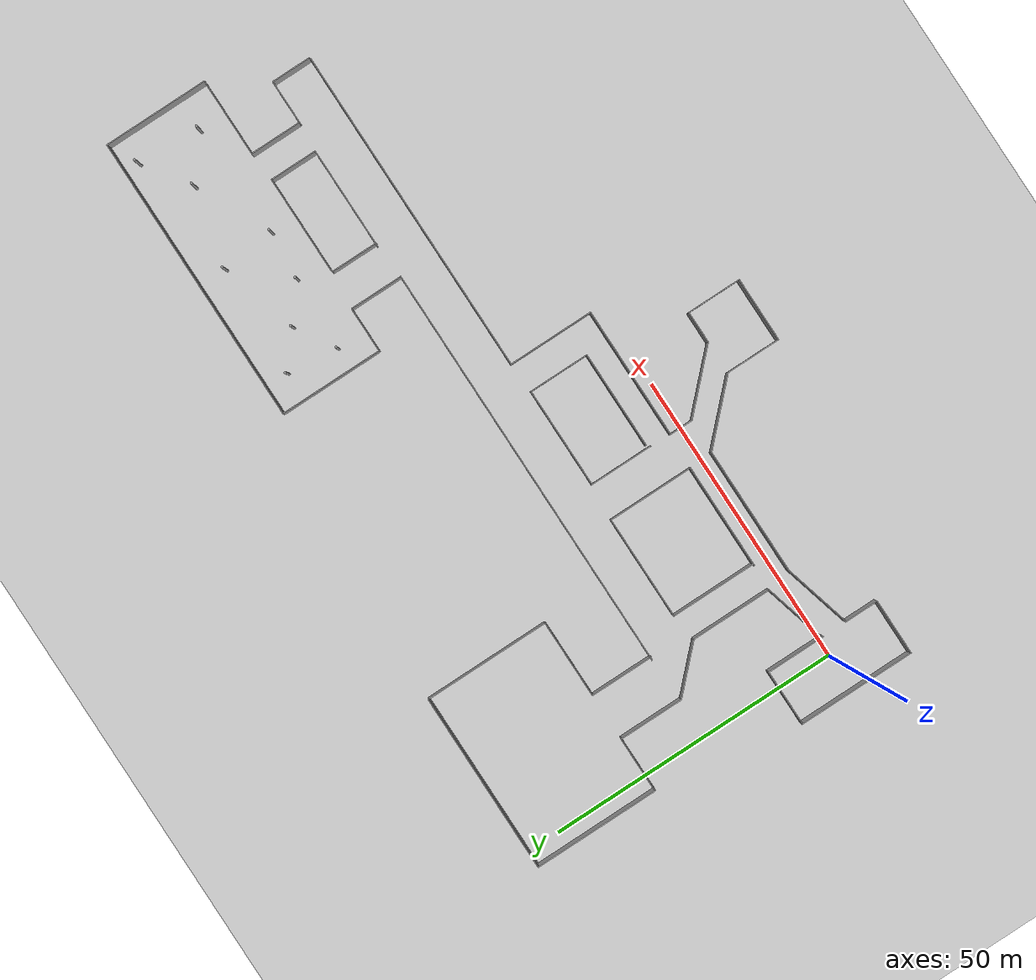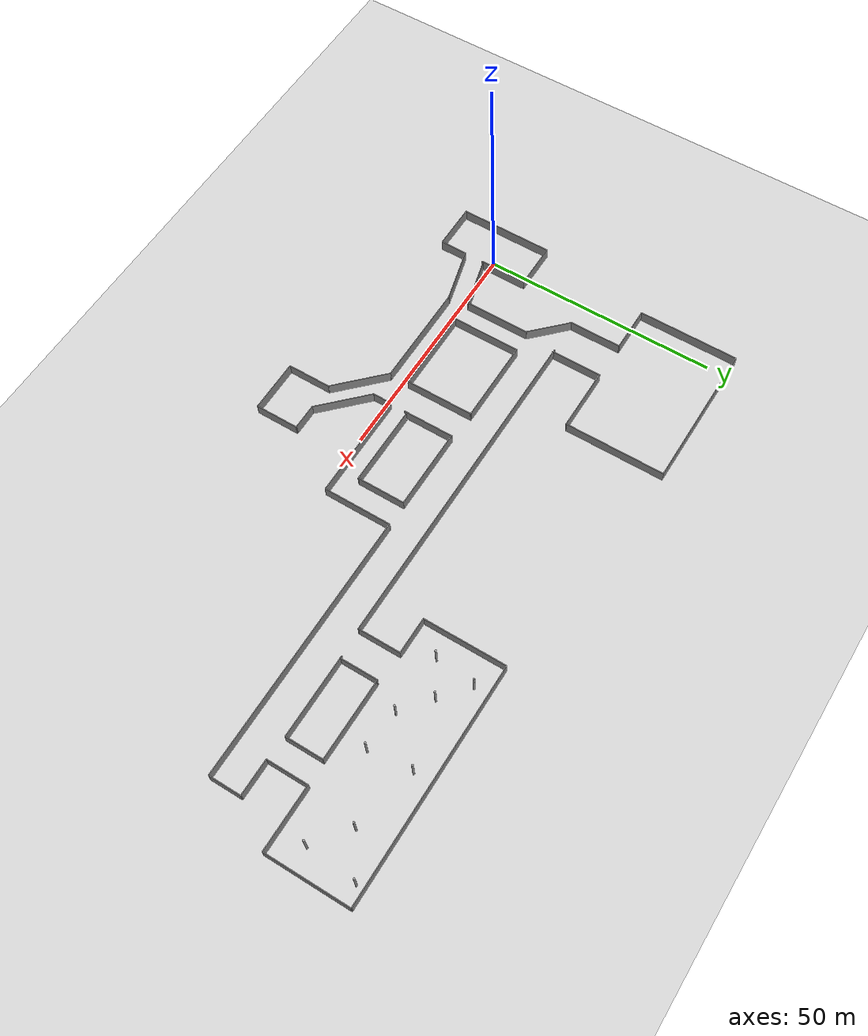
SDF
<sdf version="1.6">
 <world name="default">
  <model name="ground_plane">
   <static>1</static>
   <link name="link">
    <collision name="collision">
     <geometry><plane><normal>0 0 1</normal><size>100 100</size></plane></geometry>
     <surface><friction><ode><mu>100</mu><mu2>50</mu2></ode></friction></surface>
    </collision>
    <visual name="visual">
     <cast_shadows>0</cast_shadows>
     <geometry><plane><normal>0 0 1</normal><size>100 100</size></plane></geometry>
     <material>
      <script><uri>file://media/materials/scripts/gazebo.material</uri><name>Gazebo/Grey</name></script>
     </material>
    </visual>
   </link>
  </model>
  <model name="MultiExploreWorld_0">
   <pose>60 17.8179 2.5 0 -0 0</pose>
   <link name="Wall_10">
    <collision name="Wall_10_Collision">
     <geometry><box><size>9.5 0.15 2.5</size></box></geometry>
     <pose>0 0 1.25 0 -0 0</pose>
    </collision>
    <visual name="Wall_10_Visual">
     <pose>0 0 1.25 0 -0 0</pose>
     <geometry><box><size>9.5 0.15 2.5</size></box></geometry>
     <material>
      <script><uri>file://media/materials/scripts/gazebo.material</uri><name>Gazebo/Grey</name></script>
      <ambient>1 1 1 1</ambient>
     </material>
     <meta><layer>0</layer></meta>
    </visual>
    <pose>-60.789 -27.8261 0 0 -0 0</pose>
   </link>
   <link name="Wall_11">
    <collision name="Wall_11_Collision">
     <geometry><box><size>5.75 0.15 2.5</size></box></geometry>
     <pose>0 0 1.25 0 -0 0</pose>
    </collision>
    <visual name="Wall_11_Visual">
     <pose>0 0 1.25 0 -0 0</pose>
     <geometry><box><size>5.75 0.15 2.5</size></box></geometry>
     <material>
      <script><uri>file://media/materials/scripts/gazebo.material</uri><name>Gazebo/Grey</name></script>
      <ambient>1 1 1 1</ambient>
     </material>
     <meta><layer>0</layer></meta>
    </visual>
    <pose>-56.114 -25.0261 0 0 -0 1.5708</pose>
   </link>
   <link name="Wall_12">
    <collision name="Wall_12_Collision">
     <geometry><box><size>11.75 0.15 2.5</size></box></geometry>
     <pose>0 0 1.25 0 -0 0</pose>
    </collision>
    <visual name="Wall_12_Visual">
     <pose>0 0 1.25 0 -0 0</pose>
     <geometry><box><size>11.75 0.15 2.5</size></box></geometry>
     <material>
      <script><uri>file://media/materials/scripts/gazebo.material</uri><name>Gazebo/Grey</name></script>
      <ambient>1 1 1 1</ambient>
     </material>
     <meta><layer>0</layer></meta>
    </visual>
    <pose>-50.5116 -20.7249 0 0 -0 0.261799</pose>
   </link>
   <link name="Wall_13">
    <collision name="Wall_13_Collision">
     <geometry><box><size>21.5 0.15 2.5</size></box></geometry>
     <pose>0 0 1.25 0 -0 0</pose>
    </collision>
    <visual name="Wall_13_Visual">
     <pose>0 0 1.25 0 -0 0</pose>
     <geometry><box><size>21.5 0.15 2.5</size></box></geometry>
     <material>
      <script><uri>file://media/materials/scripts/gazebo.material</uri><name>Gazebo/Grey</name></script>
      <ambient>1 1 1 1</ambient>
     </material>
     <meta><layer>0</layer></meta>
    </visual>
    <pose>-34.2342 -19.2238 0 0 -0 0</pose>
   </link>
   <link name="Wall_14">
    <collision name="Wall_14_Collision">
     <geometry><box><size>12.5 0.15 2.5</size></box></geometry>
     <pose>0 0 1.25 0 -0 0</pose>
    </collision>
    <visual name="Wall_14_Visual">
     <pose>0 0 1.25 0 -0 0</pose>
     <geometry><box><size>12.5 0.15 2.5</size></box></geometry>
     <material>
      <script><uri>file://media/materials/scripts/gazebo.material</uri><name>Gazebo/Grey</name></script>
      <ambient>1 1 1 1</ambient>
     </material>
     <meta><layer>0</layer></meta>
    </visual>
    <pose>-19.1929 -23.5902 0 0 -0 -0.785398</pose>
   </link>
   <link name="Wall_15">
    <collision name="Wall_15_Collision">
     <geometry><box><size>9.25 0.15 2.5</size></box></geometry>
     <pose>0 0 1.25 0 -0 0</pose>
    </collision>
    <visual name="Wall_15_Visual">
     <pose>0 0 1.25 0 -0 0</pose>
     <geometry><box><size>9.25 0.15 2.5</size></box></geometry>
     <material>
      <script><uri>file://media/materials/scripts/gazebo.material</uri><name>Gazebo/Grey</name></script>
      <ambient>1 1 1 1</ambient>
     </material>
     <meta><layer>0</layer></meta>
    </visual>
    <pose>-14.8265 -32.5066 0 0 -0 -1.5708</pose>
   </link>
   <link name="Wall_16">
    <collision name="Wall_16_Collision">
     <geometry><box><size>11 0.15 2.5</size></box></geometry>
     <pose>0 0 1.25 0 -0 0</pose>
    </collision>
    <visual name="Wall_16_Visual">
     <pose>0 0 1.25 0 -0 0</pose>
     <geometry><box><size>11 0.15 2.5</size></box></geometry>
     <material>
      <script><uri>file://media/materials/scripts/gazebo.material</uri><name>Gazebo/Grey</name></script>
      <ambient>1 1 1 1</ambient>
     </material>
     <meta><layer>0</layer></meta>
    </visual>
    <pose>-9.40147 -37.0566 0 0 -0 0</pose>
   </link>
   <link name="Wall_17">
    <collision name="Wall_17_Collision">
     <geometry><box><size>9.25 0.15 2.5</size></box></geometry>
     <pose>0 0 1.25 0 -0 0</pose>
    </collision>
    <visual name="Wall_17_Visual">
     <pose>0 0 1.25 0 -0 0</pose>
     <geometry><box><size>9.25 0.15 2.5</size></box></geometry>
     <material>
      <script><uri>file://media/materials/scripts/gazebo.material</uri><name>Gazebo/Grey</name></script>
      <ambient>1 1 1 1</ambient>
     </material>
     <meta><layer>0</layer></meta>
    </visual>
    <pose>-3.97648 -32.5066 0 0 -0 1.5708</pose>
   </link>
   <link name="Wall_24">
    <collision name="Wall_24_Collision">
     <geometry><box><size>6.75 0.15 2.5</size></box></geometry>
     <pose>0 0 1.25 0 -0 0</pose>
    </collision>
    <visual name="Wall_24_Visual">
     <pose>0 0 1.25 0 -0 0</pose>
     <geometry><box><size>6.75 0.15 2.5</size></box></geometry>
     <material>
      <script><uri>file://media/materials/scripts/gazebo.material</uri><name>Gazebo/Grey</name></script>
      <ambient>1 1 1 1</ambient>
     </material>
     <meta><layer>0</layer></meta>
    </visual>
    <pose>59.714 2.20299 0 0 -0 1.5708</pose>
   </link>
   <link name="Wall_25">
    <collision name="Wall_25_Collision">
     <geometry><box><size>7.5 0.15 2.5</size></box></geometry>
     <pose>0 0 1.25 0 -0 0</pose>
    </collision>
    <visual name="Wall_25_Visual">
     <pose>0 0 1.25 0 -0 0</pose>
     <geometry><box><size>7.5 0.15 2.5</size></box></geometry>
     <material>
      <script><uri>file://media/materials/scripts/gazebo.material</uri><name>Gazebo/Grey</name></script>
      <ambient>1 1 1 1</ambient>
     </material>
     <meta><layer>0</layer></meta>
    </visual>
    <pose>56.039 5.50299 0 0 -0 3.14159</pose>
   </link>
   <link name="Wall_26">
    <collision name="Wall_26_Collision">
     <geometry><box><size>8.75 0.15 2.5</size></box></geometry>
     <pose>0 0 1.25 0 -0 0</pose>
    </collision>
    <visual name="Wall_26_Visual">
     <pose>0 0 1.25 0 -0 0</pose>
     <geometry><box><size>8.75 0.15 2.5</size></box></geometry>
     <material>
      <script><uri>file://media/materials/scripts/gazebo.material</uri><name>Gazebo/Grey</name></script>
      <ambient>1 1 1 1</ambient>
     </material>
     <meta><layer>0</layer></meta>
    </visual>
    <pose>52.364 9.80299 0 0 -0 1.5708</pose>
   </link>
   <link name="Wall_27">
    <collision name="Wall_27_Collision">
     <geometry><box><size>13.25 0.15 2.5</size></box></geometry>
     <pose>0 0 1.25 0 -0 0</pose>
    </collision>
    <visual name="Wall_27_Visual">
     <pose>0 0 1.25 0 -0 0</pose>
     <geometry><box><size>13.25 0.15 2.5</size></box></geometry>
     <material>
      <script><uri>file://media/materials/scripts/gazebo.material</uri><name>Gazebo/Grey</name></script>
      <ambient>1 1 1 1</ambient>
     </material>
     <meta><layer>0</layer></meta>
    </visual>
    <pose>58.914 14.103 0 0 -0 0</pose>
   </link>
   <link name="Wall_28">
    <collision name="Wall_28_Collision">
     <geometry><box><size>17.75 0.15 2.5</size></box></geometry>
     <pose>0 0 1.25 0 -0 0</pose>
    </collision>
    <visual name="Wall_28_Visual">
     <pose>0 0 1.25 0 -0 0</pose>
     <geometry><box><size>17.75 0.15 2.5</size></box></geometry>
     <material>
      <script><uri>file://media/materials/scripts/gazebo.material</uri><name>Gazebo/Grey</name></script>
      <ambient>1 1 1 1</ambient>
     </material>
     <meta><layer>0</layer></meta>
    </visual>
    <pose>65.464 22.903 0 0 -0 1.5708</pose>
   </link>
   <link name="Wall_29">
    <collision name="Wall_29_Collision">
     <geometry><box><size>48.75 0.15 2.5</size></box></geometry>
     <pose>0 0 1.25 0 -0 0</pose>
    </collision>
    <visual name="Wall_29_Visual">
     <pose>0 0 1.25 0 -0 0</pose>
     <geometry><box><size>48.75 0.15 2.5</size></box></geometry>
     <material>
      <script><uri>file://media/materials/scripts/gazebo.material</uri><name>Gazebo/Grey</name></script>
      <ambient>1 1 1 1</ambient>
     </material>
     <meta><layer>0</layer></meta>
    </visual>
    <pose>41.164 31.703 0 0 -0 3.14159</pose>
   </link>
   <link name="Wall_3">
    <collision name="Wall_3_Collision">
     <geometry><box><size>10 0.15 2.5</size></box></geometry>
     <pose>0 0 1.25 0 -0 0</pose>
    </collision>
    <visual name="Wall_3_Visual">
     <pose>0 0 1.25 0 -0 0</pose>
     <geometry><box><size>10 0.15 2.5</size></box></geometry>
     <material>
      <script><uri>file://media/materials/scripts/gazebo.material</uri><name>Gazebo/Grey</name></script>
      <ambient>1 1 1 1</ambient>
     </material>
     <meta><layer>0</layer></meta>
    </visual>
    <pose>-56.114 -13.1511 0 0 -0 1.5708</pose>
   </link>
   <link name="Wall_32">
    <collision name="Wall_32_Collision">
     <geometry><box><size>17.5 0.15 2.5</size></box></geometry>
     <pose>0 0 1.25 0 -0 0</pose>
    </collision>
    <visual name="Wall_32_Visual">
     <pose>0 0 1.25 0 -0 0</pose>
     <geometry><box><size>17.5 0.15 2.5</size></box></geometry>
     <material>
      <script><uri>file://media/materials/scripts/gazebo.material</uri><name>Gazebo/Grey</name></script>
      <ambient>1 1 1 1</ambient>
     </material>
     <meta><layer>0</layer></meta>
    </visual>
    <pose>16.864 23.028 0 0 -0 -1.5708</pose>
   </link>
   <link name="Wall_33">
    <collision name="Wall_33_Collision">
     <geometry><box><size>7.75 0.15 2.5</size></box></geometry>
     <pose>0 0 1.25 0 -0 0</pose>
    </collision>
    <visual name="Wall_33_Visual">
     <pose>0 0 1.25 0 -0 0</pose>
     <geometry><box><size>7.75 0.15 2.5</size></box></geometry>
     <material>
      <script><uri>file://media/materials/scripts/gazebo.material</uri><name>Gazebo/Grey</name></script>
      <ambient>1 1 1 1</ambient>
     </material>
     <meta><layer>0</layer></meta>
    </visual>
    <pose>20.664 14.353 0 0 -0 0</pose>
   </link>
   <link name="Wall_34">
    <collision name="Wall_34_Collision">
     <geometry><box><size>9 0.15 2.5</size></box></geometry>
     <pose>0 0 1.25 0 -0 0</pose>
    </collision>
    <visual name="Wall_34_Visual">
     <pose>0 0 1.25 0 -0 0</pose>
     <geometry><box><size>9 0.15 2.5</size></box></geometry>
     <material>
      <script><uri>file://media/materials/scripts/gazebo.material</uri><name>Gazebo/Grey</name></script>
      <ambient>1 1 1 1</ambient>
     </material>
     <meta><layer>0</layer></meta>
    </visual>
    <pose>24.464 9.92799 0 0 -0 -1.5708</pose>
   </link>
   <link name="Wall_35">
    <collision name="Wall_35_Collision">
     <geometry><box><size>69.5 0.15 2.5</size></box></geometry>
     <pose>0 0 1.25 0 -0 0</pose>
    </collision>
    <visual name="Wall_35_Visual">
     <pose>0 0 1.25 0 -0 0</pose>
     <geometry><box><size>69.5 0.15 2.5</size></box></geometry>
     <material>
      <script><uri>file://media/materials/scripts/gazebo.material</uri><name>Gazebo/Grey</name></script>
      <ambient>1 1 1 1</ambient>
     </material>
     <meta><layer>0</layer></meta>
    </visual>
    <pose>-10.211 5.50299 0 0 -0 3.14159</pose>
   </link>
   <link name="Wall_37">
    <collision name="Wall_37_Collision">
     <geometry><box><size>17.25 0.15 2.5</size></box></geometry>
     <pose>0 0 1.25 0 -0 0</pose>
    </collision>
    <visual name="Wall_37_Visual">
     <pose>0 0 1.25 0 -0 0</pose>
     <geometry><box><size>17.25 0.15 2.5</size></box></geometry>
     <material>
      <script><uri>file://media/materials/scripts/gazebo.material</uri><name>Gazebo/Grey</name></script>
      <ambient>1 1 1 1</ambient>
     </material>
     <meta><layer>0</layer></meta>
    </visual>
    <pose>38.8802 5.91246 0 0 -0 0</pose>
   </link>
   <link name="Wall_38">
    <collision name="Wall_38_Collision">
     <geometry><box><size>8 0.15 2.5</size></box></geometry>
     <pose>0 0 1.25 0 -0 0</pose>
    </collision>
    <visual name="Wall_38_Visual">
     <pose>0 0 1.25 0 -0 0</pose>
     <geometry><box><size>8 0.15 2.5</size></box></geometry>
     <material>
      <script><uri>file://media/materials/scripts/gazebo.material</uri><name>Gazebo/Grey</name></script>
      <ambient>1 1 1 1</ambient>
     </material>
     <meta><layer>0</layer></meta>
    </visual>
    <pose>47.4302 9.83746 0 0 -0 1.5708</pose>
   </link>
   <link name="Wall_39">
    <collision name="Wall_39_Collision">
     <geometry><box><size>16.5 0.15 2.5</size></box></geometry>
     <pose>0 0 1.25 0 -0 0</pose>
    </collision>
    <visual name="Wall_39_Visual">
     <pose>0 0 1.25 0 -0 0</pose>
     <geometry><box><size>16.5 0.15 2.5</size></box></geometry>
     <material>
      <script><uri>file://media/materials/scripts/gazebo.material</uri><name>Gazebo/Grey</name></script>
      <ambient>1 1 1 1</ambient>
     </material>
     <meta><layer>0</layer></meta>
    </visual>
    <pose>39.2552 13.7625 0 0 -0 3.14159</pose>
   </link>
   <link name="Wall_4">
    <collision name="Wall_4_Collision">
     <geometry><box><size>9.5 0.15 2.5</size></box></geometry>
     <pose>0 0 1.25 0 -0 0</pose>
    </collision>
    <visual name="Wall_4_Visual">
     <pose>0 0 1.25 0 -0 0</pose>
     <geometry><box><size>9.5 0.15 2.5</size></box></geometry>
     <material>
      <script><uri>file://media/materials/scripts/gazebo.material</uri><name>Gazebo/Grey</name></script>
      <ambient>1 1 1 1</ambient>
     </material>
     <meta><layer>0</layer></meta>
    </visual>
    <pose>-60.789 -8.22608 0 0 -0 3.14159</pose>
   </link>
   <link name="Wall_40">
    <collision name="Wall_40_Collision">
     <geometry><box><size>0.5 0.15 2.5</size></box></geometry>
     <pose>0 0 1.25 0 -0 0</pose>
    </collision>
    <visual name="Wall_40_Visual">
     <pose>0 0 1.25 0 -0 0</pose>
     <geometry><box><size>0.5 0.15 2.5</size></box></geometry>
     <material>
      <script><uri>file://media/materials/scripts/gazebo.material</uri><name>Gazebo/Grey</name></script>
      <ambient>1 1 1 1</ambient>
     </material>
     <meta><layer>0</layer></meta>
    </visual>
    <pose>30.9112 13.7172 0 0 -0 -2.87979</pose>
   </link>
   <link name="Wall_41">
    <collision name="Wall_41_Collision">
     <geometry><box><size>8 0.15 2.5</size></box></geometry>
     <pose>0 0 1.25 0 -0 0</pose>
    </collision>
    <visual name="Wall_41_Visual">
     <pose>0 0 1.25 0 -0 0</pose>
     <geometry><box><size>8 0.15 2.5</size></box></geometry>
     <material>
      <script><uri>file://media/materials/scripts/gazebo.material</uri><name>Gazebo/Grey</name></script>
      <ambient>1 1 1 1</ambient>
     </material>
     <meta><layer>0</layer></meta>
    </visual>
    <pose>30.7421 9.74687 0 0 -0 -1.5708</pose>
   </link>
   <link name="Wall_43">
    <collision name="Wall_43_Collision">
     <geometry><box><size>10.5 0.15 2.5</size></box></geometry>
     <pose>0 0 1.25 0 -0 0</pose>
    </collision>
    <visual name="Wall_43_Visual">
     <pose>0 0 1.25 0 -0 0</pose>
     <geometry><box><size>10.5 0.15 2.5</size></box></geometry>
     <material>
      <script><uri>file://media/materials/scripts/gazebo.material</uri><name>Gazebo/Grey</name></script>
      <ambient>1 1 1 1</ambient>
     </material>
     <meta><layer>0</layer></meta>
    </visual>
    <pose>-50.7332 -16.4443 0 0 -0 0.261799</pose>
   </link>
   <link name="Wall_44">
    <collision name="Wall_44_Collision">
     <geometry><box><size>13.75 0.15 2.5</size></box></geometry>
     <pose>0 0 1.25 0 -0 0</pose>
    </collision>
    <visual name="Wall_44_Visual">
     <pose>0 0 1.25 0 -0 0</pose>
     <geometry><box><size>13.75 0.15 2.5</size></box></geometry>
     <material>
      <script><uri>file://media/materials/scripts/gazebo.material</uri><name>Gazebo/Grey</name></script>
      <ambient>1 1 1 1</ambient>
     </material>
     <meta><layer>0</layer></meta>
    </visual>
    <pose>-45.7345 -8.3049 0 0 -0 1.5708</pose>
   </link>
   <link name="Wall_45">
    <collision name="Wall_45_Collision">
     <geometry><box><size>9.5 0.15 2.5</size></box></geometry>
     <pose>0 0 1.25 0 -0 0</pose>
    </collision>
    <visual name="Wall_45_Visual">
     <pose>0 0 1.25 0 -0 0</pose>
     <geometry><box><size>9.5 0.15 2.5</size></box></geometry>
     <material>
      <script><uri>file://media/materials/scripts/gazebo.material</uri><name>Gazebo/Grey</name></script>
      <ambient>1 1 1 1</ambient>
     </material>
     <meta><layer>0</layer></meta>
    </visual>
    <pose>-49.0403 1.80083 0 0 -0 2.35619</pose>
   </link>
   <link name="Wall_46">
    <collision name="Wall_46_Collision">
     <geometry><box><size>11 0.15 2.5</size></box></geometry>
     <pose>0 0 1.25 0 -0 0</pose>
    </collision>
    <visual name="Wall_46_Visual">
     <pose>0 0 1.25 0 -0 0</pose>
     <geometry><box><size>11 0.15 2.5</size></box></geometry>
     <material>
      <script><uri>file://media/materials/scripts/gazebo.material</uri><name>Gazebo/Grey</name></script>
      <ambient>1 1 1 1</ambient>
     </material>
     <meta><layer>0</layer></meta>
    </visual>
    <pose>-52.346 10.5316 0 0 -0 1.5708</pose>
   </link>
   <link name="Wall_47">
    <collision name="Wall_47_Collision">
     <geometry><box><size>9.5 0.15 2.5</size></box></geometry>
     <pose>0 0 1.25 0 -0 0</pose>
    </collision>
    <visual name="Wall_47_Visual">
     <pose>0 0 1.25 0 -0 0</pose>
     <geometry><box><size>9.5 0.15 2.5</size></box></geometry>
     <material>
      <script><uri>file://media/materials/scripts/gazebo.material</uri><name>Gazebo/Grey</name></script>
      <ambient>1 1 1 1</ambient>
     </material>
     <meta><layer>0</layer></meta>
    </visual>
    <pose>-57.021 15.9566 0 0 -0 3.14159</pose>
   </link>
   <link name="Wall_48">
    <collision name="Wall_48_Collision">
     <geometry><box><size>21.25 0.15 2.5</size></box></geometry>
     <pose>0 0 1.25 0 -0 0</pose>
    </collision>
    <visual name="Wall_48_Visual">
     <pose>0 0 1.25 0 -0 0</pose>
     <geometry><box><size>21.25 0.15 2.5</size></box></geometry>
     <material>
      <script><uri>file://media/materials/scripts/gazebo.material</uri><name>Gazebo/Grey</name></script>
      <ambient>1 1 1 1</ambient>
     </material>
     <meta><layer>0</layer></meta>
    </visual>
    <pose>-61.696 26.5066 0 0 -0 1.5708</pose>
   </link>
   <link name="Wall_49">
    <collision name="Wall_49_Collision">
     <geometry><box><size>30.5 0.15 2.5</size></box></geometry>
     <pose>0 0 1.25 0 -0 0</pose>
    </collision>
    <visual name="Wall_49_Visual">
     <pose>0 0 1.25 0 -0 0</pose>
     <geometry><box><size>30.5 0.15 2.5</size></box></geometry>
     <material>
      <script><uri>file://media/materials/scripts/gazebo.material</uri><name>Gazebo/Grey</name></script>
      <ambient>1 1 1 1</ambient>
     </material>
     <meta><layer>0</layer></meta>
    </visual>
    <pose>-46.521 37.0566 0 0 -0 0</pose>
   </link>
   <link name="Wall_5">
    <collision name="Wall_5_Collision">
     <geometry><box><size>19.75 0.15 2.5</size></box></geometry>
     <pose>0 0 1.25 0 -0 0</pose>
    </collision>
    <visual name="Wall_5_Visual">
     <pose>0 0 1.25 0 -0 0</pose>
     <geometry><box><size>19.75 0.15 2.5</size></box></geometry>
     <material>
      <script><uri>file://media/materials/scripts/gazebo.material</uri><name>Gazebo/Grey</name></script>
      <ambient>1 1 1 1</ambient>
     </material>
     <meta><layer>0</layer></meta>
    </visual>
    <pose>-65.464 -18.0261 0 0 -0 -1.5708</pose>
   </link>
   <link name="Wall_50">
    <collision name="Wall_50_Collision">
     <geometry><box><size>21.25 0.15 2.5</size></box></geometry>
     <pose>0 0 1.25 0 -0 0</pose>
    </collision>
    <visual name="Wall_50_Visual">
     <pose>0 0 1.25 0 -0 0</pose>
     <geometry><box><size>21.25 0.15 2.5</size></box></geometry>
     <material>
      <script><uri>file://media/materials/scripts/gazebo.material</uri><name>Gazebo/Grey</name></script>
      <ambient>1 1 1 1</ambient>
     </material>
     <meta><layer>0</layer></meta>
    </visual>
    <pose>-31.346 26.5066 0 0 -0 -1.5708</pose>
   </link>
   <link name="Wall_51">
    <collision name="Wall_51_Collision">
     <geometry><box><size>13.25 0.15 2.5</size></box></geometry>
     <pose>0 0 1.25 0 -0 0</pose>
    </collision>
    <visual name="Wall_51_Visual">
     <pose>0 0 1.25 0 -0 0</pose>
     <geometry><box><size>13.25 0.15 2.5</size></box></geometry>
     <material>
      <script><uri>file://media/materials/scripts/gazebo.material</uri><name>Gazebo/Grey</name></script>
      <ambient>1 1 1 1</ambient>
     </material>
     <meta><layer>0</layer></meta>
    </visual>
    <pose>-37.896 15.9566 0 0 -0 3.14159</pose>
   </link>
   <link name="Wall_52">
    <collision name="Wall_52_Collision">
     <geometry><box><size>10.75 0.15 2.5</size></box></geometry>
     <pose>0 0 1.25 0 -0 0</pose>
    </collision>
    <visual name="Wall_52_Visual">
     <pose>0 0 1.25 0 -0 0</pose>
     <geometry><box><size>10.75 0.15 2.5</size></box></geometry>
     <material>
      <script><uri>file://media/materials/scripts/gazebo.material</uri><name>Gazebo/Grey</name></script>
      <ambient>1 1 1 1</ambient>
     </material>
     <meta><layer>0</layer></meta>
    </visual>
    <pose>-44.446 10.6566 0 0 -0 -1.5708</pose>
   </link>
   <link name="Wall_55">
    <collision name="Wall_55_Collision">
     <geometry><box><size>17.75 0.15 2.5</size></box></geometry>
     <pose>0 0 1.25 0 -0 0</pose>
    </collision>
    <visual name="Wall_55_Visual">
     <pose>0 0 1.25 0 -0 0</pose>
     <geometry><box><size>17.75 0.15 2.5</size></box></geometry>
     <material>
      <script><uri>file://media/materials/scripts/gazebo.material</uri><name>Gazebo/Grey</name></script>
      <ambient>1 1 1 1</ambient>
     </material>
     <meta><layer>0</layer></meta>
    </visual>
    <pose>-32.5879 -15.2602 0 0 -0 0</pose>
   </link>
   <link name="Wall_56">
    <collision name="Wall_56_Collision">
     <geometry><box><size>14.5 0.15 2.5</size></box></geometry>
     <pose>0 0 1.25 0 -0 0</pose>
    </collision>
    <visual name="Wall_56_Visual">
     <pose>0 0 1.25 0 -0 0</pose>
     <geometry><box><size>14.5 0.15 2.5</size></box></geometry>
     <material>
      <script><uri>file://media/materials/scripts/gazebo.material</uri><name>Gazebo/Grey</name></script>
      <ambient>1 1 1 1</ambient>
     </material>
     <meta><layer>0</layer></meta>
    </visual>
    <pose>-23.7879 -8.08517 0 0 -0 1.5708</pose>
   </link>
   <link name="Wall_57">
    <collision name="Wall_57_Collision">
     <geometry><box><size>17.5 0.15 2.5</size></box></geometry>
     <pose>0 0 1.25 0 -0 0</pose>
    </collision>
    <visual name="Wall_57_Visual">
     <pose>0 0 1.25 0 -0 0</pose>
     <geometry><box><size>17.5 0.15 2.5</size></box></geometry>
     <material>
      <script><uri>file://media/materials/scripts/gazebo.material</uri><name>Gazebo/Grey</name></script>
      <ambient>1 1 1 1</ambient>
     </material>
     <meta><layer>0</layer></meta>
    </visual>
    <pose>-32.4629 -0.910175 0 0 -0 3.14159</pose>
   </link>
   <link name="Wall_58">
    <collision name="Wall_58_Collision">
     <geometry><box><size>14.5 0.15 2.5</size></box></geometry>
     <pose>0 0 1.25 0 -0 0</pose>
    </collision>
    <visual name="Wall_58_Visual">
     <pose>0 0 1.25 0 -0 0</pose>
     <geometry><box><size>14.5 0.15 2.5</size></box></geometry>
     <material>
      <script><uri>file://media/materials/scripts/gazebo.material</uri><name>Gazebo/Grey</name></script>
      <ambient>1 1 1 1</ambient>
     </material>
     <meta><layer>0</layer></meta>
    </visual>
    <pose>-41.1379 -8.08517 0 0 -0 -1.5708</pose>
   </link>
   <link name="Wall_64">
    <collision name="Wall_64_Collision">
     <geometry><box><size>5.5 0.15 2.5</size></box></geometry>
     <pose>0 0 1.25 0 -0 0</pose>
    </collision>
    <visual name="Wall_64_Visual">
     <pose>0 0 1.25 0 -0 0</pose>
     <geometry><box><size>5.5 0.15 2.5</size></box></geometry>
     <material>
      <script><uri>file://media/materials/scripts/gazebo.material</uri><name>Gazebo/Grey</name></script>
      <ambient>1 1 1 1</ambient>
     </material>
     <meta><layer>0</layer></meta>
    </visual>
    <pose>-6.65147 -27.9566 0 0 -0 3.14159</pose>
   </link>
   <link name="Wall_65">
    <collision name="Wall_65_Collision">
     <geometry><box><size>12.25 0.15 2.5</size></box></geometry>
     <pose>0 0 1.25 0 -0 0</pose>
    </collision>
    <visual name="Wall_65_Visual">
     <pose>0 0 1.25 0 -0 0</pose>
     <geometry><box><size>12.25 0.15 2.5</size></box></geometry>
     <material>
      <script><uri>file://media/materials/scripts/gazebo.material</uri><name>Gazebo/Grey</name></script>
      <ambient>1 1 1 1</ambient>
     </material>
     <meta><layer>0</layer></meta>
    </visual>
    <pose>-13.6045 -23.6786 0 0 -0 2.35619</pose>
   </link>
   <link name="Wall_66">
    <collision name="Wall_66_Collision">
     <geometry><box><size>4 0.15 2.5</size></box></geometry>
     <pose>0 0 1.25 0 -0 0</pose>
    </collision>
    <visual name="Wall_66_Visual">
     <pose>0 0 1.25 0 -0 0</pose>
     <geometry><box><size>4 0.15 2.5</size></box></geometry>
     <material>
      <script><uri>file://media/materials/scripts/gazebo.material</uri><name>Gazebo/Grey</name></script>
      <ambient>1 1 1 1</ambient>
     </material>
     <meta><layer>0</layer></meta>
    </visual>
    <pose>-17.8825 -17.4756 0 0 -0 1.5708</pose>
   </link>
   <link name="Wall_67">
    <collision name="Wall_67_Collision">
     <geometry><box><size>22.25 0.15 2.5</size></box></geometry>
     <pose>0 0 1.25 0 -0 0</pose>
    </collision>
    <visual name="Wall_67_Visual">
     <pose>0 0 1.25 0 -0 0</pose>
     <geometry><box><size>22.25 0.15 2.5</size></box></geometry>
     <material>
      <script><uri>file://media/materials/scripts/gazebo.material</uri><name>Gazebo/Grey</name></script>
      <ambient>1 1 1 1</ambient>
     </material>
     <meta><layer>0</layer></meta>
    </visual>
    <pose>-6.83247 -15.5506 0 0 -0 0</pose>
   </link>
   <link name="Wall_68">
    <collision name="Wall_68_Collision">
     <geometry><box><size>14.5 0.15 2.5</size></box></geometry>
     <pose>0 0 1.25 0 -0 0</pose>
    </collision>
    <visual name="Wall_68_Visual">
     <pose>0 0 1.25 0 -0 0</pose>
     <geometry><box><size>14.5 0.15 2.5</size></box></geometry>
     <material>
      <script><uri>file://media/materials/scripts/gazebo.material</uri><name>Gazebo/Grey</name></script>
      <ambient>1 1 1 1</ambient>
     </material>
     <meta><layer>0</layer></meta>
    </visual>
    <pose>4.21753 -8.37556 0 0 -0 1.5708</pose>
   </link>
   <link name="Wall_69">
    <collision name="Wall_69_Collision">
     <geometry><box><size>55.5 0.15 2.5</size></box></geometry>
     <pose>0 0 1.25 0 -0 0</pose>
    </collision>
    <visual name="Wall_69_Visual">
     <pose>0 0 1.25 0 -0 0</pose>
     <geometry><box><size>55.5 0.15 2.5</size></box></geometry>
     <material>
      <script><uri>file://media/materials/scripts/gazebo.material</uri><name>Gazebo/Grey</name></script>
      <ambient>1 1 1 1</ambient>
     </material>
     <meta><layer>0</layer></meta>
    </visual>
    <pose>31.8925 -1.20056 0 0 -0 0</pose>
   </link>
   <link name="Wall_71">
    <collision name="Wall_71_Collision">
     <geometry><box><size>10.75 0.15 2.5</size></box></geometry>
     <pose>0 0 1.25 0 -0 0</pose>
    </collision>
    <visual name="Wall_71_Visual">
     <pose>0 0 1.25 0 -0 0</pose>
     <geometry><box><size>10.75 0.15 2.5</size></box></geometry>
     <material>
      <script><uri>file://media/materials/scripts/gazebo.material</uri><name>Gazebo/Grey</name></script>
      <ambient>1 1 1 1</ambient>
     </material>
     <meta><layer>0</layer></meta>
    </visual>
    <pose>-17.718 -6.74789 0 0 -0 1.5708</pose>
   </link>
   <link name="Wall_72">
    <collision name="Wall_72_Collision">
     <geometry><box><size>17 0.15 2.5</size></box></geometry>
     <pose>0 0 1.25 0 -0 0</pose>
    </collision>
    <visual name="Wall_72_Visual">
     <pose>0 0 1.25 0 -0 0</pose>
     <geometry><box><size>17 0.15 2.5</size></box></geometry>
     <material>
      <script><uri>file://media/materials/scripts/gazebo.material</uri><name>Gazebo/Grey</name></script>
      <ambient>1 1 1 1</ambient>
     </material>
     <meta><layer>0</layer></meta>
    </visual>
    <pose>-9.29296 -1.44789 0 0 -0 0</pose>
   </link>
   <link name="Wall_73">
    <collision name="Wall_73_Collision">
     <geometry><box><size>10.25 0.15 2.5</size></box></geometry>
     <pose>0 0 1.25 0 -0 0</pose>
    </collision>
    <visual name="Wall_73_Visual">
     <pose>0 0 1.25 0 -0 0</pose>
     <geometry><box><size>10.25 0.15 2.5</size></box></geometry>
     <material>
      <script><uri>file://media/materials/scripts/gazebo.material</uri><name>Gazebo/Grey</name></script>
      <ambient>1 1 1 1</ambient>
     </material>
     <meta><layer>0</layer></meta>
    </visual>
    <pose>-0.867964 -6.49789 0 0 -0 -1.5708</pose>
   </link>
   <link name="Wall_74">
    <collision name="Wall_74_Collision">
     <geometry><box><size>16.5 0.15 2.5</size></box></geometry>
     <pose>0 0 1.25 0 -0 0</pose>
    </collision>
    <visual name="Wall_74_Visual">
     <pose>0 0 1.25 0 -0 0</pose>
     <geometry><box><size>16.5 0.15 2.5</size></box></geometry>
     <material>
      <script><uri>file://media/materials/scripts/gazebo.material</uri><name>Gazebo/Grey</name></script>
      <ambient>1 1 1 1</ambient>
     </material>
     <meta><layer>0</layer></meta>
    </visual>
    <pose>-9.04296 -11.5479 0 0 -0 3.14159</pose>
   </link>
   <static>1</static>
  </model>
  <model name="empty_pillar">
   <link name="link">
    <inertial>
     <mass>1</mass>
     <inertia><ixx>0.145833</ixx><ixy>0</ixy><ixz>0</ixz><iyy>0.145833</iyy><iyz>0</iyz><izz>0.125</izz></inertia>
    </inertial>
    <visual name="visual">
     <geometry><cylinder><radius>0.2</radius><length>5</length></cylinder></geometry>
     <material>
      <script><name>Gazebo/Grey</name><uri>file://media/materials/scripts/gazebo.material</uri></script>
      <shader type="vertex"><normal_map>__default__</normal_map></shader>
      <ambient>0.3 0.3 0.3 1</ambient>
      <diffuse>0.7 0.7 0.7 1</diffuse>
      <specular>0.01 0.01 0.01 1</specular>
      <emissive>0 0 0 1</emissive>
     </material>
    </visual>
    <collision name="collision">
     <geometry><cylinder><radius>0.05</radius><length>5</length></cylinder></geometry>
     <surface>
      <friction>
       <ode><mu>1</mu><mu2>1</mu2><fdir1>0 0 0</fdir1><slip1>0</slip1><slip2>0</slip2></ode>
       <torsional>
        <coefficient>1</coefficient>
        <patch_radius>0</patch_radius>
        <surface_radius>0</surface_radius>
        <use_patch_radius>1</use_patch_radius>
        <ode><slip>0</slip></ode>
       </torsional>
      </friction>
      <bounce><restitution_coefficient>0</restitution_coefficient><threshold>1e+06</threshold></bounce>
      <contact>
       <collide_without_contact>0</collide_without_contact>
       <collide_without_contact_bitmask>1</collide_without_contact_bitmask>
       <collide_bitmask>1</collide_bitmask>
       <ode>
        <soft_cfm>0</soft_cfm>
        <soft_erp>0.2</soft_erp>
        <kp>1e+13</kp>
        <kd>1</kd>
        <max_vel>0.01</max_vel>
        <min_depth>0</min_depth>
       </ode>
       <bullet>
        <split_impulse>1</split_impulse>
        <split_impulse_penetration_threshold>-0.01</split_impulse_penetration_threshold>
        <soft_cfm>0</soft_cfm>
        <soft_erp>0.2</soft_erp>
        <kp>1e+13</kp>
        <kd>1</kd>
       </bullet>
      </contact>
     </surface>
    </collision>
   </link>
   <static>0</static>
   <pose>81.9144 45.8591 2.5 -1e-06 -4e-06 0.000894</pose>
  </model>
  <model name="empty_pillar_0">
   <link name="link">
    <inertial>
     <mass>1</mass>
     <inertia><ixx>0.145833</ixx><ixy>0</ixy><ixz>0</ixz><iyy>0.145833</iyy><iyz>0</iyz><izz>0.125</izz></inertia>
    </inertial>
    <visual name="visual">
     <geometry><cylinder><radius>0.2</radius><length>5</length></cylinder></geometry>
     <material>
      <script><name>Gazebo/Grey</name><uri>file://media/materials/scripts/gazebo.material</uri></script>
      <shader type="vertex"><normal_map>__default__</normal_map></shader>
      <ambient>0.3 0.3 0.3 1</ambient>
      <diffuse>0.7 0.7 0.7 1</diffuse>
      <specular>0.01 0.01 0.01 1</specular>
      <emissive>0 0 0 1</emissive>
     </material>
    </visual>
    <collision name="collision">
     <geometry><cylinder><radius>0.05</radius><length>5</length></cylinder></geometry>
     <surface>
      <friction>
       <ode><mu>1</mu><mu2>1</mu2><fdir1>0 0 0</fdir1><slip1>0</slip1><slip2>0</slip2></ode>
       <torsional>
        <coefficient>1</coefficient>
        <patch_radius>0</patch_radius>
        <surface_radius>0</surface_radius>
        <use_patch_radius>1</use_patch_radius>
        <ode><slip>0</slip></ode>
       </torsional>
      </friction>
      <bounce><restitution_coefficient>0</restitution_coefficient><threshold>1e+06</threshold></bounce>
      <contact>
       <collide_without_contact>0</collide_without_contact>
       <collide_without_contact_bitmask>1</collide_without_contact_bitmask>
       <collide_bitmask>1</collide_bitmask>
       <ode>
        <soft_cfm>0</soft_cfm>
        <soft_erp>0.2</soft_erp>
        <kp>1e+13</kp>
        <kd>1</kd>
        <max_vel>0.01</max_vel>
        <min_depth>0</min_depth>
       </ode>
       <bullet>
        <split_impulse>1</split_impulse>
        <split_impulse_penetration_threshold>-0.01</split_impulse_penetration_threshold>
        <soft_cfm>0</soft_cfm>
        <soft_erp>0.2</soft_erp>
        <kp>1e+13</kp>
        <kd>1</kd>
       </bullet>
      </contact>
     </surface>
    </collision>
   </link>
   <static>0</static>
   <pose>87.4143 41.3092 2.5 1e-06 -3e-06 0.001559</pose>
  </model>
  <model name="empty_pillar_1">
   <link name="link">
    <inertial>
     <mass>1</mass>
     <inertia><ixx>0.145833</ixx><ixy>0</ixy><ixz>0</ixz><iyy>0.145833</iyy><iyz>0</iyz><izz>0.125</izz></inertia>
    </inertial>
    <visual name="visual">
     <geometry><cylinder><radius>0.2</radius><length>5</length></cylinder></geometry>
     <material>
      <script><name>Gazebo/Grey</name><uri>file://media/materials/scripts/gazebo.material</uri></script>
      <shader type="vertex"><normal_map>__default__</normal_map></shader>
      <ambient>0.3 0.3 0.3 1</ambient>
      <diffuse>0.7 0.7 0.7 1</diffuse>
      <specular>0.01 0.01 0.01 1</specular>
      <emissive>0 0 0 1</emissive>
     </material>
    </visual>
    <collision name="collision">
     <geometry><cylinder><radius>0.05</radius><length>5</length></cylinder></geometry>
     <surface>
      <friction>
       <ode><mu>1</mu><mu2>1</mu2><fdir1>0 0 0</fdir1><slip1>0</slip1><slip2>0</slip2></ode>
       <torsional>
        <coefficient>1</coefficient>
        <patch_radius>0</patch_radius>
        <surface_radius>0</surface_radius>
        <use_patch_radius>1</use_patch_radius>
        <ode><slip>0</slip></ode>
       </torsional>
      </friction>
      <bounce><restitution_coefficient>0</restitution_coefficient><threshold>1e+06</threshold></bounce>
      <contact>
       <collide_without_contact>0</collide_without_contact>
       <collide_without_contact_bitmask>1</collide_without_contact_bitmask>
       <collide_bitmask>1</collide_bitmask>
       <ode>
        <soft_cfm>0</soft_cfm>
        <soft_erp>0.2</soft_erp>
        <kp>1e+13</kp>
        <kd>1</kd>
        <max_vel>0.01</max_vel>
        <min_depth>0</min_depth>
       </ode>
       <bullet>
        <split_impulse>1</split_impulse>
        <split_impulse_penetration_threshold>-0.01</split_impulse_penetration_threshold>
        <soft_cfm>0</soft_cfm>
        <soft_erp>0.2</soft_erp>
        <kp>1e+13</kp>
        <kd>1</kd>
       </bullet>
      </contact>
     </surface>
    </collision>
   </link>
   <static>0</static>
   <pose>100.454 45.0911 2.49999 1e-06 -6e-06 0.000206</pose>
  </model>
  <model name="empty_pillar_2">
   <link name="link">
    <inertial>
     <mass>1</mass>
     <inertia><ixx>0.145833</ixx><ixy>0</ixy><ixz>0</ixz><iyy>0.145833</iyy><iyz>0</iyz><izz>0.125</izz></inertia>
    </inertial>
    <visual name="visual">
     <geometry><cylinder><radius>0.2</radius><length>5</length></cylinder></geometry>
     <material>
      <script><name>Gazebo/Grey</name><uri>file://media/materials/scripts/gazebo.material</uri></script>
      <shader type="vertex"><normal_map>__default__</normal_map></shader>
      <ambient>0.3 0.3 0.3 1</ambient>
      <diffuse>0.7 0.7 0.7 1</diffuse>
      <specular>0.01 0.01 0.01 1</specular>
      <emissive>0 0 0 1</emissive>
     </material>
    </visual>
    <collision name="collision">
     <geometry><cylinder><radius>0.05</radius><length>5</length></cylinder></geometry>
     <surface>
      <friction>
       <ode><mu>1</mu><mu2>1</mu2><fdir1>0 0 0</fdir1><slip1>0</slip1><slip2>0</slip2></ode>
       <torsional>
        <coefficient>1</coefficient>
        <patch_radius>0</patch_radius>
        <surface_radius>0</surface_radius>
        <use_patch_radius>1</use_patch_radius>
        <ode><slip>0</slip></ode>
       </torsional>
      </friction>
      <bounce><restitution_coefficient>0</restitution_coefficient><threshold>1e+06</threshold></bounce>
      <contact>
       <collide_without_contact>0</collide_without_contact>
       <collide_without_contact_bitmask>1</collide_without_contact_bitmask>
       <collide_bitmask>1</collide_bitmask>
       <ode>
        <soft_cfm>0</soft_cfm>
        <soft_erp>0.2</soft_erp>
        <kp>1e+13</kp>
        <kd>1</kd>
        <max_vel>0.01</max_vel>
        <min_depth>0</min_depth>
       </ode>
       <bullet>
        <split_impulse>1</split_impulse>
        <split_impulse_penetration_threshold>-0.01</split_impulse_penetration_threshold>
        <soft_cfm>0</soft_cfm>
        <soft_erp>0.2</soft_erp>
        <kp>1e+13</kp>
        <kd>1</kd>
       </bullet>
      </contact>
     </surface>
    </collision>
   </link>
   <static>0</static>
   <pose>113.651 42.0443 2.49999 -3e-06 1.5e-05 -0.000694</pose>
  </model>
  <model name="empty_pillar_3">
   <link name="link">
    <inertial>
     <mass>1</mass>
     <inertia><ixx>0.145833</ixx><ixy>0</ixy><ixz>0</ixz><iyy>0.145833</iyy><iyz>0</iyz><izz>0.125</izz></inertia>
    </inertial>
    <visual name="visual">
     <geometry><cylinder><radius>0.2</radius><length>5</length></cylinder></geometry>
     <material>
      <script><name>Gazebo/Grey</name><uri>file://media/materials/scripts/gazebo.material</uri></script>
      <shader type="vertex"><normal_map>__default__</normal_map></shader>
      <ambient>0.3 0.3 0.3 1</ambient>
      <diffuse>0.7 0.7 0.7 1</diffuse>
      <specular>0.01 0.01 0.01 1</specular>
      <emissive>0 0 0 1</emissive>
     </material>
    </visual>
    <collision name="collision">
     <geometry><cylinder><radius>0.05</radius><length>5</length></cylinder></geometry>
     <surface>
      <friction>
       <ode><mu>1</mu><mu2>1</mu2><fdir1>0 0 0</fdir1><slip1>0</slip1><slip2>0</slip2></ode>
       <torsional>
        <coefficient>1</coefficient>
        <patch_radius>0</patch_radius>
        <surface_radius>0</surface_radius>
        <use_patch_radius>1</use_patch_radius>
        <ode><slip>0</slip></ode>
       </torsional>
      </friction>
      <bounce><restitution_coefficient>0</restitution_coefficient><threshold>1e+06</threshold></bounce>
      <contact>
       <collide_without_contact>0</collide_without_contact>
       <collide_without_contact_bitmask>1</collide_without_contact_bitmask>
       <collide_bitmask>1</collide_bitmask>
       <ode>
        <soft_cfm>0</soft_cfm>
        <soft_erp>0.2</soft_erp>
        <kp>1e+13</kp>
        <kd>1</kd>
        <max_vel>0.01</max_vel>
        <min_depth>0</min_depth>
       </ode>
       <bullet>
        <split_impulse>1</split_impulse>
        <split_impulse_penetration_threshold>-0.01</split_impulse_penetration_threshold>
        <soft_cfm>0</soft_cfm>
        <soft_erp>0.2</soft_erp>
        <kp>1e+13</kp>
        <kd>1</kd>
       </bullet>
      </contact>
     </surface>
    </collision>
   </link>
   <static>0</static>
   <pose>101.335 36.0543 2.5 -2e-06 4e-06 -0.000478</pose>
  </model>
  <model name="empty_pillar_4">
   <link name="link">
    <inertial>
     <mass>1</mass>
     <inertia><ixx>0.145833</ixx><ixy>0</ixy><ixz>0</ixz><iyy>0.145833</iyy><iyz>0</iyz><izz>0.125</izz></inertia>
    </inertial>
    <visual name="visual">
     <geometry><cylinder><radius>0.2</radius><length>5</length></cylinder></geometry>
     <material>
      <script><name>Gazebo/Grey</name><uri>file://media/materials/scripts/gazebo.material</uri></script>
      <shader type="vertex"><normal_map>__default__</normal_map></shader>
      <ambient>0.3 0.3 0.3 1</ambient>
      <diffuse>0.7 0.7 0.7 1</diffuse>
      <specular>0.01 0.01 0.01 1</specular>
      <emissive>0 0 0 1</emissive>
     </material>
    </visual>
    <collision name="collision">
     <geometry><cylinder><radius>0.05</radius><length>5</length></cylinder></geometry>
     <surface>
      <friction>
       <ode><mu>1</mu><mu2>1</mu2><fdir1>0 0 0</fdir1><slip1>0</slip1><slip2>0</slip2></ode>
       <torsional>
        <coefficient>1</coefficient>
        <patch_radius>0</patch_radius>
        <surface_radius>0</surface_radius>
        <use_patch_radius>1</use_patch_radius>
        <ode><slip>0</slip></ode>
       </torsional>
      </friction>
      <bounce><restitution_coefficient>0</restitution_coefficient><threshold>1e+06</threshold></bounce>
      <contact>
       <collide_without_contact>0</collide_without_contact>
       <collide_without_contact_bitmask>1</collide_without_contact_bitmask>
       <collide_bitmask>1</collide_bitmask>
       <ode>
        <soft_cfm>0</soft_cfm>
        <soft_erp>0.2</soft_erp>
        <kp>1e+13</kp>
        <kd>1</kd>
        <max_vel>0.01</max_vel>
        <min_depth>0</min_depth>
       </ode>
       <bullet>
        <split_impulse>1</split_impulse>
        <split_impulse_penetration_threshold>-0.01</split_impulse_penetration_threshold>
        <soft_cfm>0</soft_cfm>
        <soft_erp>0.2</soft_erp>
        <kp>1e+13</kp>
        <kd>1</kd>
       </bullet>
      </contact>
     </surface>
    </collision>
   </link>
   <static>0</static>
   <pose>121.321 47.2973 2.5 0 2e-06 -0.000496</pose>
  </model>
  <model name="empty_pillar_5">
   <link name="link">
    <inertial>
     <mass>1</mass>
     <inertia><ixx>0.145833</ixx><ixy>0</ixy><ixz>0</ixz><iyy>0.145833</iyy><iyz>0</iyz><izz>0.125</izz></inertia>
    </inertial>
    <visual name="visual">
     <geometry><cylinder><radius>0.2</radius><length>5</length></cylinder></geometry>
     <material>
      <script><name>Gazebo/Grey</name><uri>file://media/materials/scripts/gazebo.material</uri></script>
      <shader type="vertex"><normal_map>__default__</normal_map></shader>
      <ambient>0.3 0.3 0.3 1</ambient>
      <diffuse>0.7 0.7 0.7 1</diffuse>
      <specular>0.01 0.01 0.01 1</specular>
      <emissive>0 0 0 1</emissive>
     </material>
    </visual>
    <collision name="collision">
     <geometry><cylinder><radius>0.05</radius><length>5</length></cylinder></geometry>
     <surface>
      <friction>
       <ode><mu>1</mu><mu2>1</mu2><fdir1>0 0 0</fdir1><slip1>0</slip1><slip2>0</slip2></ode>
       <torsional>
        <coefficient>1</coefficient>
        <patch_radius>0</patch_radius>
        <surface_radius>0</surface_radius>
        <use_patch_radius>1</use_patch_radius>
        <ode><slip>0</slip></ode>
       </torsional>
      </friction>
      <bounce><restitution_coefficient>0</restitution_coefficient><threshold>1e+06</threshold></bounce>
      <contact>
       <collide_without_contact>0</collide_without_contact>
       <collide_without_contact_bitmask>1</collide_without_contact_bitmask>
       <collide_bitmask>1</collide_bitmask>
       <ode>
        <soft_cfm>0</soft_cfm>
        <soft_erp>0.2</soft_erp>
        <kp>1e+13</kp>
        <kd>1</kd>
        <max_vel>0.01</max_vel>
        <min_depth>0</min_depth>
       </ode>
       <bullet>
        <split_impulse>1</split_impulse>
        <split_impulse_penetration_threshold>-0.01</split_impulse_penetration_threshold>
        <soft_cfm>0</soft_cfm>
        <soft_erp>0.2</soft_erp>
        <kp>1e+13</kp>
        <kd>1</kd>
       </bullet>
      </contact>
     </surface>
    </collision>
   </link>
   <static>0</static>
   <pose>120.441 36.6767 2.49999 -2e-06 -6e-06 8e-06</pose>
  </model>
  <model name="empty_pillar_6">
   <link name="link">
    <inertial>
     <mass>1</mass>
     <inertia><ixx>0.145833</ixx><ixy>0</ixy><ixz>0</ixz><iyy>0.145833</iyy><iyz>0</iyz><izz>0.125</izz></inertia>
    </inertial>
    <visual name="visual">
     <geometry><cylinder><radius>0.2</radius><length>5</length></cylinder></geometry>
     <material>
      <script><name>Gazebo/Grey</name><uri>file://media/materials/scripts/gazebo.material</uri></script>
      <shader type="vertex"><normal_map>__default__</normal_map></shader>
      <ambient>0.3 0.3 0.3 1</ambient>
      <diffuse>0.7 0.7 0.7 1</diffuse>
      <specular>0.01 0.01 0.01 1</specular>
      <emissive>0 0 0 1</emissive>
     </material>
    </visual>
    <collision name="collision">
     <geometry><cylinder><radius>0.05</radius><length>5</length></cylinder></geometry>
     <surface>
      <friction>
       <ode><mu>1</mu><mu2>1</mu2><fdir1>0 0 0</fdir1><slip1>0</slip1><slip2>0</slip2></ode>
       <torsional>
        <coefficient>1</coefficient>
        <patch_radius>0</patch_radius>
        <surface_radius>0</surface_radius>
        <use_patch_radius>1</use_patch_radius>
        <ode><slip>0</slip></ode>
       </torsional>
      </friction>
      <bounce><restitution_coefficient>0</restitution_coefficient><threshold>1e+06</threshold></bounce>
      <contact>
       <collide_without_contact>0</collide_without_contact>
       <collide_without_contact_bitmask>1</collide_without_contact_bitmask>
       <collide_bitmask>1</collide_bitmask>
       <ode>
        <soft_cfm>0</soft_cfm>
        <soft_erp>0.2</soft_erp>
        <kp>1e+13</kp>
        <kd>1</kd>
        <max_vel>0.01</max_vel>
        <min_depth>0</min_depth>
       </ode>
       <bullet>
        <split_impulse>1</split_impulse>
        <split_impulse_penetration_threshold>-0.01</split_impulse_penetration_threshold>
        <soft_cfm>0</soft_cfm>
        <soft_erp>0.2</soft_erp>
        <kp>1e+13</kp>
        <kd>1</kd>
       </bullet>
      </contact>
     </surface>
    </collision>
   </link>
   <static>0</static>
   <pose>93.1477 36.7015 2.49999 -1e-06 -6e-06 0.000635</pose>
  </model>
  <model name="empty_pillar_7">
   <link name="link">
    <inertial>
     <mass>1</mass>
     <inertia><ixx>0.145833</ixx><ixy>0</ixy><ixz>0</ixz><iyy>0.145833</iyy><iyz>0</iyz><izz>0.125</izz></inertia>
    </inertial>
    <visual name="visual">
     <geometry><cylinder><radius>0.2</radius><length>5</length></cylinder></geometry>
     <material>
      <script><name>Gazebo/Grey</name><uri>file://media/materials/scripts/gazebo.material</uri></script>
      <shader type="vertex"><normal_map>__default__</normal_map></shader>
      <ambient>0.3 0.3 0.3 1</ambient>
      <diffuse>0.7 0.7 0.7 1</diffuse>
      <specular>0.01 0.01 0.01 1</specular>
      <emissive>0 0 0 1</emissive>
     </material>
    </visual>
    <collision name="collision">
     <geometry><cylinder><radius>0.05</radius><length>5</length></cylinder></geometry>
     <surface>
      <friction>
       <ode><mu>1</mu><mu2>1</mu2><fdir1>0 0 0</fdir1><slip1>0</slip1><slip2>0</slip2></ode>
       <torsional>
        <coefficient>1</coefficient>
        <patch_radius>0</patch_radius>
        <surface_radius>0</surface_radius>
        <use_patch_radius>1</use_patch_radius>
        <ode><slip>0</slip></ode>
       </torsional>
      </friction>
      <bounce><restitution_coefficient>0</restitution_coefficient><threshold>1e+06</threshold></bounce>
      <contact>
       <collide_without_contact>0</collide_without_contact>
       <collide_without_contact_bitmask>1</collide_without_contact_bitmask>
       <collide_bitmask>1</collide_bitmask>
       <ode>
        <soft_cfm>0</soft_cfm>
        <soft_erp>0.2</soft_erp>
        <kp>1e+13</kp>
        <kd>1</kd>
        <max_vel>0.01</max_vel>
        <min_depth>0</min_depth>
       </ode>
       <bullet>
        <split_impulse>1</split_impulse>
        <split_impulse_penetration_threshold>-0.01</split_impulse_penetration_threshold>
        <soft_cfm>0</soft_cfm>
        <soft_erp>0.2</soft_erp>
        <kp>1e+13</kp>
        <kd>1</kd>
       </bullet>
      </contact>
     </surface>
    </collision>
   </link>
   <static>0</static>
   <pose>80.9338 37.3588 2.49999 -1e-06 1e-06 -0.000321</pose>
  </model>
 </world>
</sdf>
